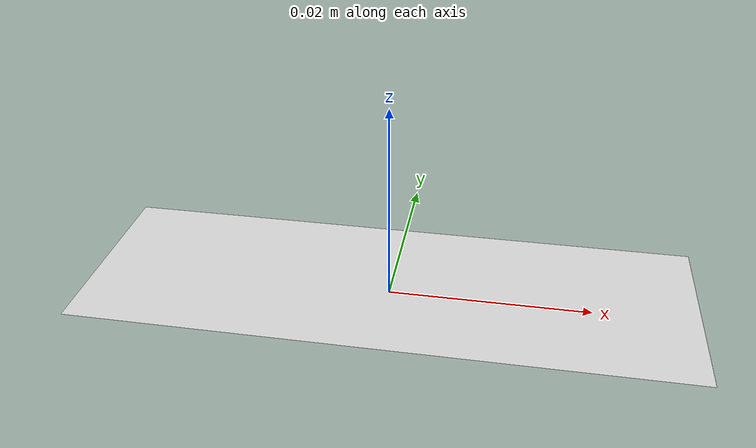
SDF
<?xml version="1.0" ?>
<sdf version="1.4">
  <model name="maskor_ev3_tile">
    <pose>0 0 0 0 0 0</pose>
    <static>true</static>
    <link name="link">
      <pose>0 0 0.001 0 0 0</pose>
       <visual name="visual">
       <geometry>
         <mesh>
         <uri>model://maskor_ev3_tile/meshes/ev3_tile.dae</uri>
           <scale>1 1 1</scale>
         </mesh>
       </geometry>
     <material>
          <script>
            <uri>model://maskor_ev3_tile/materials/scripts</uri>
            <uri>model://maskor_ev3_tile/materials/textures</uri>
            <name>white</name>
          </script>
        </material>
      </visual>
    </link>
  </model>
</sdf>
